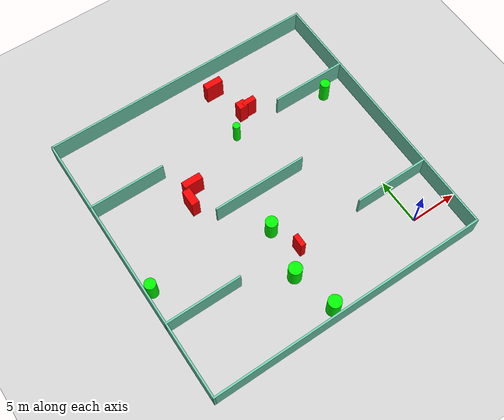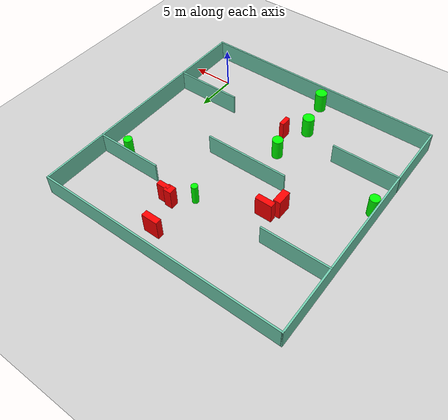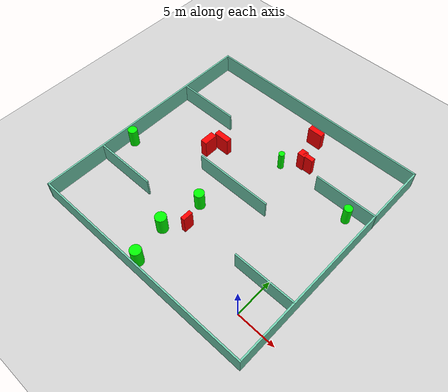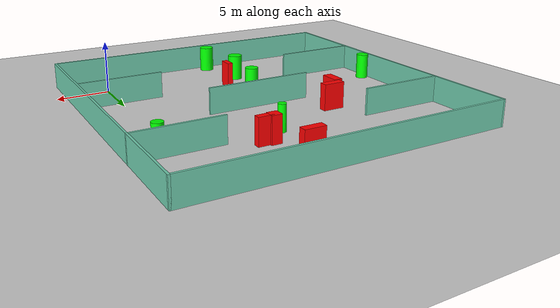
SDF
<sdf version="1.7">
 <world name="default">
  <light name="sun" type="directional">
   <pose>0 0 10 0 -0 0</pose>
   <diffuse>0.8 0.8 0.8 1</diffuse>
   <specular>0.2 0.2 0.2 1</specular>
   <attenuation>
    <range>1000</range>
    <constant>0.9</constant>
    <linear>0.01</linear>
    <quadratic>0.001</quadratic>
   </attenuation>
   <direction>-0.5 0.1 -0.9</direction>
   <spot><inner_angle>0</inner_angle><outer_angle>0</outer_angle><falloff>0</falloff></spot>
  </light>
  <model name="ground_plane">
   <static>1</static>
   <link name="link">
    <collision name="collision">
     <geometry><plane><normal>0 0 1</normal><size>100 100</size></plane></geometry>
     <surface>
      <contact><collide_bitmask>65535</collide_bitmask></contact>
      <friction><ode><mu>100</mu><mu2>50</mu2></ode></friction>
     </surface>
    </collision>
    <visual name="visual">
     <cast_shadows>0</cast_shadows>
     <geometry><plane><normal>0 0 1</normal><size>100 100</size></plane></geometry>
     <material>
      <script><uri>file://media/materials/scripts/gazebo.material</uri><name>Gazebo/Grey</name></script>
     </material>
    </visual>
   </link>
  </model>
  <gravity>0 0 -9.8</gravity>
  <magnetic_field>6e-06 2.3e-05 -4.2e-05</magnetic_field>
  <atmosphere type="adiabatic"/>
  <physics type="ode">
   <max_step_size>0.001</max_step_size>
   <real_time_factor>1</real_time_factor>
   <real_time_update_rate>1000</real_time_update_rate>
  </physics>
  <scene><ambient>0.4 0.4 0.4 1</ambient><background>0.7 0.7 0.7 1</background><shadows>1</shadows></scene>
  <spherical_coordinates>
   <surface_model>EARTH_WGS84</surface_model>
   <latitude_deg>0</latitude_deg>
   <longitude_deg>0</longitude_deg>
   <elevation>0</elevation>
   <heading_deg>0</heading_deg>
  </spherical_coordinates>
  <model name="my_base_walls">
   <link name="Wall_10">
    <collision name="Wall_10_Collision">
     <geometry><box><size>8.2 0.2 2.5</size></box></geometry>
     <pose>0 0 1.25 0 -0 0</pose>
    </collision>
    <visual name="Wall_10_Visual">
     <pose>0 0 1.25 0 -0 0</pose>
     <geometry><box><size>8.2 0.2 2.5</size></box></geometry>
     <material>
      <script><uri>file://media/materials/scripts/gazebo.material</uri><name>Gazebo/Grey</name></script>
      <ambient>0.435294 0.796078 0.67451 1</ambient>
     </material>
     <meta><layer>0</layer></meta>
    </visual>
    <pose>-11 -7 0 0 -0 0</pose>
   </link>
   <link name="Wall_12">
    <collision name="Wall_12_Collision">
     <geometry><box><size>8.2 0.2 2.5</size></box></geometry>
     <pose>0 0 1.25 0 -0 0</pose>
    </collision>
    <visual name="Wall_12_Visual">
     <pose>0 0 1.25 0 -0 0</pose>
     <geometry><box><size>8.2 0.2 2.5</size></box></geometry>
     <material>
      <script><uri>file://media/materials/scripts/gazebo.material</uri><name>Gazebo/Grey</name></script>
      <ambient>0.435294 0.796078 0.67451 1</ambient>
     </material>
     <meta><layer>0</layer></meta>
    </visual>
    <pose>-11 7 0 0 -0 0</pose>
   </link>
   <link name="Wall_14">
    <collision name="Wall_14_Collision">
     <geometry><box><size>8.2 0.2 2.5</size></box></geometry>
     <pose>0 0 1.25 0 -0 0</pose>
    </collision>
    <visual name="Wall_14_Visual">
     <pose>0 0 1.25 0 -0 0</pose>
     <geometry><box><size>8.2 0.2 2.5</size></box></geometry>
     <material>
      <script><uri>file://media/materials/scripts/gazebo.material</uri><name>Gazebo/Grey</name></script>
      <ambient>0.435294 0.796078 0.67451 1</ambient>
     </material>
     <meta><layer>0</layer></meta>
    </visual>
    <pose>11 7 0 0 -0 3.14159</pose>
   </link>
   <link name="Wall_16">
    <collision name="Wall_16_Collision">
     <geometry><box><size>10.2 0.2 2.5</size></box></geometry>
     <pose>0 0 1.25 0 -0 0</pose>
    </collision>
    <visual name="Wall_16_Visual">
     <pose>0 0 1.25 0 -0 0</pose>
     <geometry><box><size>10.2 0.2 2.5</size></box></geometry>
     <material>
      <script><uri>file://media/materials/scripts/gazebo.material</uri><name>Gazebo/Grey</name></script>
      <ambient>0.435294 0.796078 0.67451 1</ambient>
     </material>
     <meta><layer>0</layer></meta>
    </visual>
    <pose>0 0 0 0 -0 3.14159</pose>
   </link>
   <link name="Wall_2">
    <collision name="Wall_2_Collision">
     <geometry><box><size>30.2 0.2 2.5</size></box></geometry>
     <pose>0 0 1.25 0 -0 0</pose>
    </collision>
    <visual name="Wall_2_Visual">
     <pose>0 0 1.25 0 -0 0</pose>
     <geometry><box><size>30.2 0.2 2.5</size></box></geometry>
     <material>
      <script><uri>file://media/materials/scripts/gazebo.material</uri><name>Gazebo/Grey</name></script>
      <ambient>0.435294 0.796078 0.67451 1</ambient>
     </material>
     <meta><layer>0</layer></meta>
    </visual>
    <pose>0 -15 0 0 -0 3.14159</pose>
   </link>
   <link name="Wall_3">
    <collision name="Wall_3_Collision">
     <geometry><box><size>30.2 0.2 2.5</size></box></geometry>
     <pose>0 0 1.25 0 -0 0</pose>
    </collision>
    <visual name="Wall_3_Visual">
     <pose>0 0 1.25 0 -0 0</pose>
     <geometry><box><size>30.2 0.2 2.5</size></box></geometry>
     <material>
      <script><uri>file://media/materials/scripts/gazebo.material</uri><name>Gazebo/Grey</name></script>
      <ambient>0.435294 0.796078 0.67451 1</ambient>
     </material>
     <meta><layer>0</layer></meta>
    </visual>
    <pose>-15 0 0 0 -0 1.5708</pose>
   </link>
   <link name="Wall_4">
    <collision name="Wall_4_Collision">
     <geometry><box><size>30.2 0.2 2.5</size></box></geometry>
     <pose>0 0 1.25 0 -0 0</pose>
    </collision>
    <visual name="Wall_4_Visual">
     <pose>0 0 1.25 0 -0 0</pose>
     <geometry><box><size>30.2 0.2 2.5</size></box></geometry>
     <material>
      <script><uri>file://media/materials/scripts/gazebo.material</uri><name>Gazebo/Grey</name></script>
      <ambient>0.435294 0.796078 0.67451 1</ambient>
     </material>
     <meta><layer>0</layer></meta>
    </visual>
    <pose>0 15 0 0 -0 0</pose>
   </link>
   <link name="Wall_6">
    <collision name="Wall_6_Collision">
     <geometry><box><size>30.2 0.2 2.5</size></box></geometry>
     <pose>0 0 1.25 0 -0 0</pose>
    </collision>
    <visual name="Wall_6_Visual">
     <pose>0 0 1.25 0 -0 0</pose>
     <geometry><box><size>30.2 0.2 2.5</size></box></geometry>
     <material>
      <script><uri>file://media/materials/scripts/gazebo.material</uri><name>Gazebo/Grey</name></script>
      <ambient>0.435294 0.796078 0.67451 1</ambient>
     </material>
     <meta><layer>0</layer></meta>
    </visual>
    <pose>15 0 0 0 -0 1.5708</pose>
   </link>
   <link name="Wall_8">
    <collision name="Wall_8_Collision">
     <geometry><box><size>8.2 0.2 2.5</size></box></geometry>
     <pose>0 0 1.25 0 -0 0</pose>
    </collision>
    <visual name="Wall_8_Visual">
     <pose>0 0 1.25 0 -0 0</pose>
     <geometry><box><size>8.2 0.2 2.5</size></box></geometry>
     <material>
      <script><uri>file://media/materials/scripts/gazebo.material</uri><name>Gazebo/Grey</name></script>
      <ambient>0.435294 0.796078 0.67451 1</ambient>
     </material>
     <meta><layer>0</layer></meta>
    </visual>
    <pose>11 -7 0 0 -0 3.14159</pose>
   </link>
   <static>1</static>
   <pose>-11 11 0 0 -0 0</pose>
  </model>
  <model name="cylinder1">
   <static>1</static>
   <link name="link">
    <inertial>
     <mass>1</mass>
     <inertia><ixx>0.5</ixx><ixy>0</ixy><ixz>0</ixz><iyy>0.5</iyy><iyz>0</iyz><izz>1</izz></inertia>
    </inertial>
    <collision name="collision">
     <geometry><cylinder><radius>0.3804346191188454</radius><length>2.5</length></cylinder></geometry>
    </collision>
    <visual name="visual">
     <geometry><cylinder><radius>0.3804346191188454</radius><length>2.5</length></cylinder></geometry>
     <material>
      <ambient>0 1 0 1</ambient>
      <diffuse>0 1 0 1</diffuse>
      <specular>0.1 0.1 0.1 1</specular>
      <emissive>0 0 0 0</emissive>
     </material>
    </visual>
   </link>
   <pose>-9.294596492502208 17.766666570771818 1.25 0 0 0</pose>
  </model>
  <model name="cylinder2">
   <static>1</static>
   <link name="link">
    <inertial>
     <mass>1</mass>
     <inertia><ixx>0.5</ixx><ixy>0</ixy><ixz>0</ixz><iyy>0.5</iyy><iyz>0</iyz><izz>1</izz></inertia>
    </inertial>
    <collision name="collision">
     <geometry><cylinder><radius>0.6981866922868706</radius><length>2.5</length></cylinder></geometry>
    </collision>
    <visual name="visual">
     <geometry><cylinder><radius>0.6981866922868706</radius><length>2.5</length></cylinder></geometry>
     <material>
      <ambient>0 1 0 1</ambient>
      <diffuse>0 1 0 1</diffuse>
      <specular>0.1 0.1 0.1 1</specular>
      <emissive>0 0 0 0</emissive>
     </material>
    </visual>
   </link>
   <pose>-13.262479442134314 1.7665675718829963 1.25 0 0 0</pose>
  </model>
  <model name="cylinder3">
   <static>1</static>
   <link name="link">
    <inertial>
     <mass>1</mass>
     <inertia><ixx>0.5</ixx><ixy>0</ixy><ixz>0</ixz><iyy>0.5</iyy><iyz>0</iyz><izz>1</izz></inertia>
    </inertial>
    <collision name="collision">
     <geometry><cylinder><radius>0.5921552295216019</radius><length>2.5</length></cylinder></geometry>
    </collision>
    <visual name="visual">
     <geometry><cylinder><radius>0.5921552295216019</radius><length>2.5</length></cylinder></geometry>
     <material>
      <ambient>0 1 0 1</ambient>
      <diffuse>0 1 0 1</diffuse>
      <specular>0.1 0.1 0.1 1</specular>
      <emissive>0 0 0 0</emissive>
     </material>
    </visual>
   </link>
   <pose>-25.26353615892099 8.052404661265424 1.25 0 0 0</pose>
  </model>
  <model name="cylinder4">
   <static>1</static>
   <link name="link">
    <inertial>
     <mass>1</mass>
     <inertia><ixx>0.5</ixx><ixy>0</ixy><ixz>0</ixz><iyy>0.5</iyy><iyz>0</iyz><izz>1</izz></inertia>
    </inertial>
    <collision name="collision">
     <geometry><cylinder><radius>0.5153900151965517</radius><length>2.5</length></cylinder></geometry>
    </collision>
    <visual name="visual">
     <geometry><cylinder><radius>0.5153900151965517</radius><length>2.5</length></cylinder></geometry>
     <material>
      <ambient>0 1 0 1</ambient>
      <diffuse>0 1 0 1</diffuse>
      <specular>0.1 0.1 0.1 1</specular>
      <emissive>0 0 0 0</emissive>
     </material>
    </visual>
   </link>
   <pose>1.2132264661243184 16.83618504396242 1.25 0 0 0</pose>
  </model>
  <model name="cylinder5">
   <static>1</static>
   <link name="link">
    <inertial>
     <mass>1</mass>
     <inertia><ixx>0.5</ixx><ixy>0</ixy><ixz>0</ixz><iyy>0.5</iyy><iyz>0</iyz><izz>1</izz></inertia>
    </inertial>
    <collision name="collision">
     <geometry><cylinder><radius>0.697300893350242</radius><length>2.5</length></cylinder></geometry>
    </collision>
    <visual name="visual">
     <geometry><cylinder><radius>0.697300893350242</radius><length>2.5</length></cylinder></geometry>
     <material>
      <ambient>0 1 0 1</ambient>
      <diffuse>0 1 0 1</diffuse>
      <specular>0.1 0.1 0.1 1</specular>
      <emissive>0 0 0 0</emissive>
     </material>
    </visual>
   </link>
   <pose>-12.119673707457657 -2.8930168552834465 1.25 0 0 0</pose>
  </model>
  <model name="cylinder6">
   <static>1</static>
   <link name="link">
    <inertial>
     <mass>1</mass>
     <inertia><ixx>0.5</ixx><ixy>0</ixy><ixz>0</ixz><iyy>0.5</iyy><iyz>0</iyz><izz>1</izz></inertia>
    </inertial>
    <collision name="collision">
     <geometry><cylinder><radius>0.6317137654754366</radius><length>2.5</length></cylinder></geometry>
    </collision>
    <visual name="visual">
     <geometry><cylinder><radius>0.6317137654754366</radius><length>2.5</length></cylinder></geometry>
     <material>
      <ambient>0 1 0 1</ambient>
      <diffuse>0 1 0 1</diffuse>
      <specular>0.1 0.1 0.1 1</specular>
      <emissive>0 0 0 0</emissive>
     </material>
    </visual>
   </link>
   <pose>-12.422875284954959 6.918004252080943 1.25 0 0 0</pose>
  </model>
  <model name="box1">
   <static>1</static>
   <link name="link">
    <inertial>
     <mass>1</mass>
     <inertia><ixx>0.083</ixx><ixy>0</ixy><ixz>0</ixz><iyy>0.083</iyy><iyz>0</iyz><izz>0.083</izz></inertia>
    </inertial>
    <collision name="collision">
     <geometry><box><size>2.054282295825989 0.7314736133377532 2.5</size></box></geometry>
    </collision>
    <visual name="visual">
     <geometry><box><size>2.054282295825989 0.7314736133377532 2.5</size></box></geometry>
     <material>
      <ambient>1 0 0 1</ambient>
      <diffuse>1 0 0 1</diffuse>
      <specular>0.1 0.1 0.1 1</specular>
      <emissive>0 0 0 0</emissive>
     </material>
    </visual>
    <sensor name="my_contact" type="contact">
     <contact><collision>box_collision</collision><topic>__default_topic__</topic></contact>
    </sensor>
   </link>
   <pose>-16.362673704024296 14.969655006522807 1.25 0 0 0</pose>
  </model>
  <model name="box2">
   <static>1</static>
   <link name="link">
    <inertial>
     <mass>1</mass>
     <inertia><ixx>0.083</ixx><ixy>0</ixy><ixz>0</ixz><iyy>0.083</iyy><iyz>0</iyz><izz>0.083</izz></inertia>
    </inertial>
    <collision name="collision">
     <geometry><box><size>0.8540225096697999 1.8022715886891574 2.5</size></box></geometry>
    </collision>
    <visual name="visual">
     <geometry><box><size>0.8540225096697999 1.8022715886891574 2.5</size></box></geometry>
     <material>
      <ambient>1 0 0 1</ambient>
      <diffuse>1 0 0 1</diffuse>
      <specular>0.1 0.1 0.1 1</specular>
      <emissive>0 0 0 0</emissive>
     </material>
    </visual>
    <sensor name="my_contact" type="contact">
     <contact><collision>box_collision</collision><topic>__default_topic__</topic></contact>
    </sensor>
   </link>
   <pose>-17.414985894761138 13.525516349112756 1.25 0 0 0</pose>
  </model>
  <model name="box3">
   <static>1</static>
   <link name="link">
    <inertial>
     <mass>1</mass>
     <inertia><ixx>0.083</ixx><ixy>0</ixy><ixz>0</ixz><iyy>0.083</iyy><iyz>0</iyz><izz>0.083</izz></inertia>
    </inertial>
    <collision name="collision">
     <geometry><box><size>0.9556200800005389 0.9372020939226459 2.5</size></box></geometry>
    </collision>
    <visual name="visual">
     <geometry><box><size>0.9556200800005389 0.9372020939226459 2.5</size></box></geometry>
     <material>
      <ambient>1 0 0 1</ambient>
      <diffuse>1 0 0 1</diffuse>
      <specular>0.1 0.1 0.1 1</specular>
      <emissive>0 0 0 0</emissive>
     </material>
    </visual>
    <sensor name="my_contact" type="contact">
     <contact><collision>box_collision</collision><topic>__default_topic__</topic></contact>
    </sensor>
   </link>
   <pose>-7.459674707572944 19.59116674849531 1.25 0 0 0</pose>
  </model>
  <model name="box4">
   <static>1</static>
   <link name="link">
    <inertial>
     <mass>1</mass>
     <inertia><ixx>0.083</ixx><ixy>0</ixy><ixz>0</ixz><iyy>0.083</iyy><iyz>0</iyz><izz>0.083</izz></inertia>
    </inertial>
    <collision name="collision">
     <geometry><box><size>0.5399449038407613 1.325048236073674 2.5</size></box></geometry>
    </collision>
    <visual name="visual">
     <geometry><box><size>0.5399449038407613 1.325048236073674 2.5</size></box></geometry>
     <material>
      <ambient>1 0 0 1</ambient>
      <diffuse>1 0 0 1</diffuse>
      <specular>0.1 0.1 0.1 1</specular>
      <emissive>0 0 0 0</emissive>
     </material>
    </visual>
    <sensor name="my_contact" type="contact">
     <contact><collision>box_collision</collision><topic>__default_topic__</topic></contact>
    </sensor>
   </link>
   <pose>-11.299412289613791 3.8611916407892943 1.25 0 0 0</pose>
  </model>
  <model name="box5">
   <static>1</static>
   <link name="link">
    <inertial>
     <mass>1</mass>
     <inertia><ixx>0.083</ixx><ixy>0</ixy><ixz>0</ixz><iyy>0.083</iyy><iyz>0</iyz><izz>0.083</izz></inertia>
    </inertial>
    <collision name="collision">
     <geometry><box><size>1.9645497670622056 0.7268174645754814 2.5</size></box></geometry>
    </collision>
    <visual name="visual">
     <geometry><box><size>1.9645497670622056 0.7268174645754814 2.5</size></box></geometry>
     <material>
      <ambient>1 0 0 1</ambient>
      <diffuse>1 0 0 1</diffuse>
      <specular>0.1 0.1 0.1 1</specular>
      <emissive>0 0 0 0</emissive>
     </material>
    </visual>
    <sensor name="my_contact" type="contact">
     <contact><collision>box_collision</collision><topic>__default_topic__</topic></contact>
    </sensor>
   </link>
   <pose>-8.479013974497889 23.485036639028536 1.25 0 0 0</pose>
  </model>
  <model name="box6">
   <static>1</static>
   <link name="link">
    <inertial>
     <mass>1</mass>
     <inertia><ixx>0.083</ixx><ixy>0</ixy><ixz>0</ixz><iyy>0.083</iyy><iyz>0</iyz><izz>0.083</izz></inertia>
    </inertial>
    <collision name="collision">
     <geometry><box><size>1.4639867277243628 0.6007741573128322 2.5</size></box></geometry>
    </collision>
    <visual name="visual">
     <geometry><box><size>1.4639867277243628 0.6007741573128322 2.5</size></box></geometry>
     <material>
      <ambient>1 0 0 1</ambient>
      <diffuse>1 0 0 1</diffuse>
      <specular>0.1 0.1 0.1 1</specular>
      <emissive>0 0 0 0</emissive>
     </material>
    </visual>
    <sensor name="my_contact" type="contact">
     <contact><collision>box_collision</collision><topic>__default_topic__</topic></contact>
    </sensor>
   </link>
   <pose>-6.608772379165746 19.555025040335607 1.25 0 0 0</pose>
  </model>
 </world>
</sdf>
